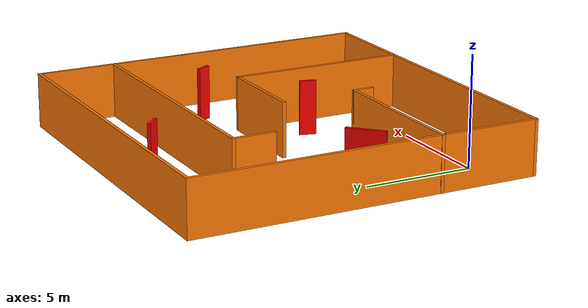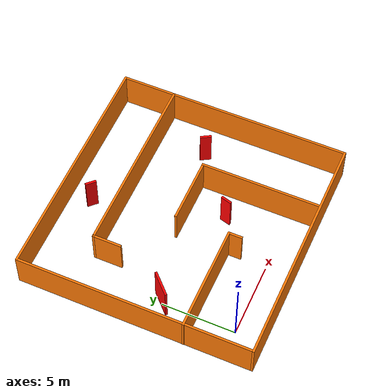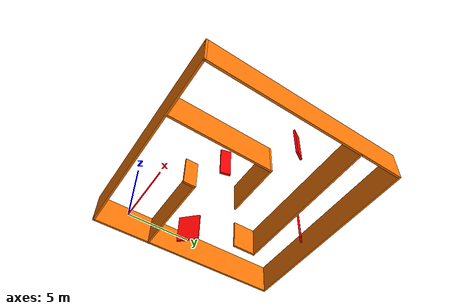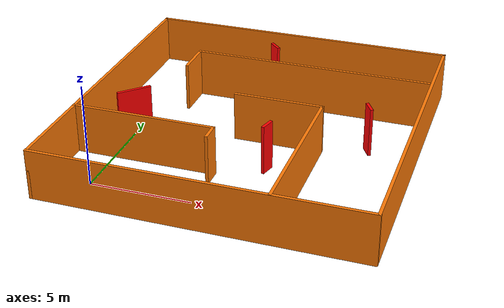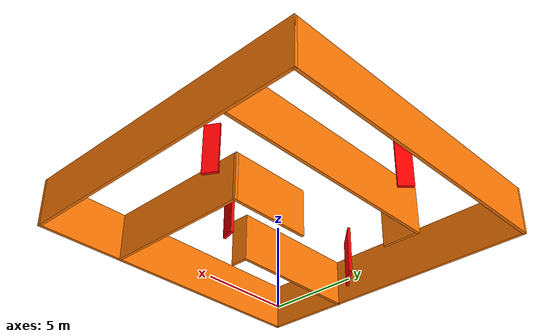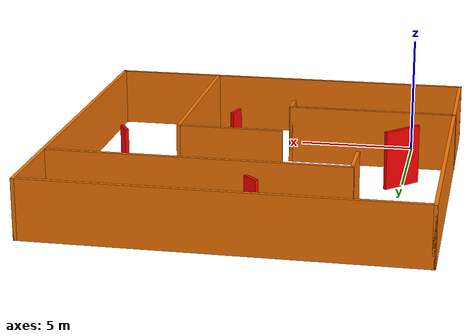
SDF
<?xml version='1.0'?>
<sdf version='1.7'>
  <model name='Task1'>
    <pose>5.95075 6.02355 0 0 -0 0</pose>
    <link name='Wall_10'>
      <collision name='Wall_10_Collision'>
        <geometry>
          <box>
            <size>16 0.15 2.5</size>
          </box>
        </geometry>
        <pose>0 0 1.25 0 -0 0</pose>
      </collision>
      <visual name='Wall_10_Visual'>
        <pose>0 0 1.25 0 -0 0</pose>
        <geometry>
          <box>
            <size>16 0.15 2.5</size>
          </box>
        </geometry>
        <material>
          <script>
            <uri>file://media/materials/scripts/gazebo.material</uri>
            <name>Gazebo/Grey</name>
          </script>
          <ambient>0.996078 0.47451 0.0196078 1</ambient>
        </material>
        <meta>
          <layer>0</layer>
        </meta>
      </visual>
      <pose>-7.91799 0 0 0 -0 1.5708</pose>
    </link>
    <link name='Wall_12'>
      <collision name='Wall_12_Collision'>
        <geometry>
          <box>
            <size>16 0.15 2.5</size>
          </box>
        </geometry>
        <pose>0 0 1.25 0 -0 0</pose>
      </collision>
      <visual name='Wall_12_Visual'>
        <pose>0 0 1.25 0 -0 0</pose>
        <geometry>
          <box>
            <size>16 0.15 2.5</size>
          </box>
        </geometry>
        <material>
          <script>
            <uri>file://media/materials/scripts/gazebo.material</uri>
            <name>Gazebo/Grey</name>
          </script>
          <ambient>0.996078 0.47451 0.0196078 1</ambient>
        </material>
        <meta>
          <layer>0</layer>
        </meta>
      </visual>
      <pose>0.007006 7.925 0 0 -0 0</pose>
    </link>
    <link name='Wall_14'>
      <collision name='Wall_14_Collision'>
        <geometry>
          <box>
            <size>16 0.15 2.5</size>
          </box>
        </geometry>
        <pose>0 0 1.25 0 -0 0</pose>
      </collision>
      <visual name='Wall_14_Visual'>
        <pose>0 0 1.25 0 -0 0</pose>
        <geometry>
          <box>
            <size>16 0.15 2.5</size>
          </box>
        </geometry>
        <material>
          <script>
            <uri>file://media/materials/scripts/gazebo.material</uri>
            <name>Gazebo/Grey</name>
          </script>
          <ambient>0.996078 0.47451 0.0196078 1</ambient>
        </material>
        <meta>
          <layer>0</layer>
        </meta>
      </visual>
      <pose>7.93201 0 0 0 -0 -1.5708</pose>
    </link>
    <link name='Wall_20'>
      <collision name='Wall_20_Collision'>
        <geometry>
          <box>
            <size>7.25 0.15 2.5</size>
          </box>
        </geometry>
        <pose>0 0 1.25 0 -0 0</pose>
      </collision>
      <visual name='Wall_20_Visual'>
        <pose>0 0 1.25 0 -0 0</pose>
        <geometry>
          <box>
            <size>7.25 0.15 2.5</size>
          </box>
        </geometry>
        <material>
          <script>
            <uri>file://media/materials/scripts/gazebo.material</uri>
            <name>Gazebo/Grey</name>
          </script>
          <ambient>0.996078 0.47451 0.0196078 1</ambient>
        </material>
        <meta>
          <layer>0</layer>
        </meta>
      </visual>
      <pose>-4.38201 -3.365 0 0 -0 0</pose>
    </link>
    <link name='Wall_21'>
      <collision name='Wall_21_Collision'>
        <geometry>
          <box>
            <size>1 0.15 2.5</size>
          </box>
        </geometry>
        <pose>0 0 1.25 0 -0 0</pose>
      </collision>
      <visual name='Wall_21_Visual'>
        <pose>0 0 1.25 0 -0 0</pose>
        <geometry>
          <box>
            <size>1 0.15 2.5</size>
          </box>
        </geometry>
        <material>
          <script>
            <uri>file://media/materials/scripts/gazebo.material</uri>
            <name>Gazebo/Grey</name>
          </script>
          <ambient>0.996078 0.47451 0.0196078 1</ambient>
        </material>
        <meta>
          <layer>0</layer>
        </meta>
      </visual>
      <pose>-0.832007 -3.79 0 0 -0 -1.5708</pose>
    </link>
    <link name='Wall_23'>
      <collision name='Wall_23_Collision'>
        <geometry>
          <box>
            <size>8.25 0.15 2.5</size>
          </box>
        </geometry>
        <pose>0 0 1.25 0 -0 0</pose>
      </collision>
      <visual name='Wall_23_Visual'>
        <pose>0 0 1.25 0 -0 0</pose>
        <geometry>
          <box>
            <size>8.25 0.15 2.5</size>
          </box>
        </geometry>
        <material>
          <script>
            <uri>file://media/materials/scripts/gazebo.material</uri>
            <name>Gazebo/Grey</name>
          </script>
          <ambient>0.996078 0.47451 0.0196078 1</ambient>
        </material>
        <meta>
          <layer>0</layer>
        </meta>
      </visual>
      <pose>3.37121 -3.84181 0 0 -0 1.5708</pose>
    </link>
    <link name='Wall_24'>
      <collision name='Wall_24_Collision'>
        <geometry>
          <box>
            <size>4.5 0.15 2.5</size>
          </box>
        </geometry>
        <pose>0 0 1.25 0 -0 0</pose>
      </collision>
      <visual name='Wall_24_Visual'>
        <pose>0 0 1.25 0 -0 0</pose>
        <geometry>
          <box>
            <size>4.5 0.15 2.5</size>
          </box>
        </geometry>
        <material>
          <script>
            <uri>file://media/materials/scripts/gazebo.material</uri>
            <name>Gazebo/Grey</name>
          </script>
          <ambient>0.996078 0.47451 0.0196078 1</ambient>
        </material>
        <meta>
          <layer>0</layer>
        </meta>
      </visual>
      <pose>1.19621 0.208189 0 0 -0 3.14159</pose>
    </link>
    <link name='Wall_26'>
      <collision name='Wall_26_Collision'>
        <geometry>
          <box>
            <size>12.5 0.15 2.5</size>
          </box>
        </geometry>
        <pose>0 0 1.25 0 -0 0</pose>
      </collision>
      <visual name='Wall_26_Visual'>
        <pose>0 0 1.25 0 -0 0</pose>
        <geometry>
          <box>
            <size>12.5 0.15 2.5</size>
          </box>
        </geometry>
        <material>
          <script>
            <uri>file://media/materials/scripts/gazebo.material</uri>
            <name>Gazebo/Grey</name>
          </script>
          <ambient>0.996078 0.47451 0.0196078 1</ambient>
        </material>
        <meta>
          <layer>0</layer>
        </meta>
      </visual>
      <pose>1.71594 4.32222 0 0 -0 3.14159</pose>
    </link>
    <link name='Wall_27'>
      <collision name='Wall_27_Collision'>
        <geometry>
          <box>
            <size>2 0.15 2.5</size>
          </box>
        </geometry>
        <pose>0 0 1.25 0 -0 0</pose>
      </collision>
      <visual name='Wall_27_Visual'>
        <pose>0 0 1.25 0 -0 0</pose>
        <geometry>
          <box>
            <size>2 0.15 2.5</size>
          </box>
        </geometry>
        <material>
          <script>
            <uri>file://media/materials/scripts/gazebo.material</uri>
            <name>Gazebo/Grey</name>
          </script>
          <ambient>0.996078 0.47451 0.0196078 1</ambient>
        </material>
        <meta>
          <layer>0</layer>
        </meta>
      </visual>
      <pose>-4.45906 3.39722 0 0 -0 -1.5708</pose>
    </link>
    <link name='Wall_29'>
      <collision name='Wall_29_Collision'>
        <geometry>
          <box>
            <size>1.75 0.15 2.5</size>
          </box>
        </geometry>
        <pose>0 0 1.25 0 -0 0</pose>
      </collision>
      <visual name='Wall_29_Visual'>
        <pose>0 0 1.25 0 -0 0</pose>
        <geometry>
          <box>
            <size>1.75 0.15 2.5</size>
          </box>
        </geometry>
        <material>
          <script>
            <uri>file://media/materials/scripts/gazebo.material</uri>
            <name>Gazebo/Grey</name>
          </script>
          <ambient>1 0 0 1</ambient>
        </material>
        <meta>
          <layer>0</layer>
        </meta>
      </visual>
      <pose>-5.90967 -0.976979 0 0 -0 0.785398</pose>
    </link>
    <link name='Wall_31'>
      <collision name='Wall_31_Collision'>
        <geometry>
          <box>
            <size>0.75 0.15 2.5</size>
          </box>
        </geometry>
        <pose>0 0 1.25 0 -0 0</pose>
      </collision>
      <visual name='Wall_31_Visual'>
        <pose>0 0 1.25 0 -0 0</pose>
        <geometry>
          <box>
            <size>0.75 0.15 2.5</size>
          </box>
        </geometry>
        <material>
          <script>
            <uri>file://media/materials/scripts/gazebo.material</uri>
            <name>Gazebo/Grey</name>
          </script>
          <ambient>1 0 0 1</ambient>
        </material>
        <meta>
          <layer>0</layer>
        </meta>
      </visual>
      <pose>1.41034 -2.26289 0 0 -0 -1.8326</pose>
    </link>
    <link name='Wall_34'>
      <collision name='Wall_34_Collision'>
        <geometry>
          <box>
            <size>0.75 0.15 2.5</size>
          </box>
        </geometry>
        <pose>0 0 1.25 0 -0 0</pose>
      </collision>
      <visual name='Wall_34_Visual'>
        <pose>0 0 1.25 0 -0 0</pose>
        <geometry>
          <box>
            <size>0.75 0.15 2.5</size>
          </box>
        </geometry>
        <material>
          <script>
            <uri>file://media/materials/scripts/gazebo.material</uri>
            <name>Gazebo/Grey</name>
          </script>
          <ambient>1 0 0 1</ambient>
        </material>
        <meta>
          <layer>0</layer>
        </meta>
      </visual>
      <pose>5.51204 0.94165 0 0 -0 -1.0472</pose>
    </link>
    <link name='Wall_36'>
      <collision name='Wall_36_Collision'>
        <geometry>
          <box>
            <size>0.75 0.15 2.5</size>
          </box>
        </geometry>
        <pose>0 0 1.25 0 -0 0</pose>
      </collision>
      <visual name='Wall_36_Visual'>
        <pose>0 0 1.25 0 -0 0</pose>
        <geometry>
          <box>
            <size>0.75 0.15 2.5</size>
          </box>
        </geometry>
        <material>
          <script>
            <uri>file://media/materials/scripts/gazebo.material</uri>
            <name>Gazebo/Grey</name>
          </script>
          <ambient>1 0 0 1</ambient>
        </material>
        <meta>
          <layer>0</layer>
        </meta>
      </visual>
      <pose>-0.878238 6.27378 0 0 -0 -0.785398</pose>
    </link>
    <link name='Wall_5'>
      <collision name='Wall_5_Collision'>
        <geometry>
          <box>
            <size>16 0.15 2.5</size>
          </box>
        </geometry>
        <pose>0 0 1.25 0 -0 0</pose>
      </collision>
      <visual name='Wall_5_Visual'>
        <pose>0 0 1.25 0 -0 0</pose>
        <geometry>
          <box>
            <size>16 0.15 2.5</size>
          </box>
        </geometry>
        <material>
          <script>
            <uri>file://media/materials/scripts/gazebo.material</uri>
            <name>Gazebo/Grey</name>
          </script>
          <ambient>0.996078 0.47451 0.0196078 1</ambient>
        </material>
        <meta>
          <layer>0</layer>
        </meta>
      </visual>
      <pose>0.007006 -7.925 0 0 -0 0</pose>
    </link>
    <static>1</static>
  </model>
</sdf>
